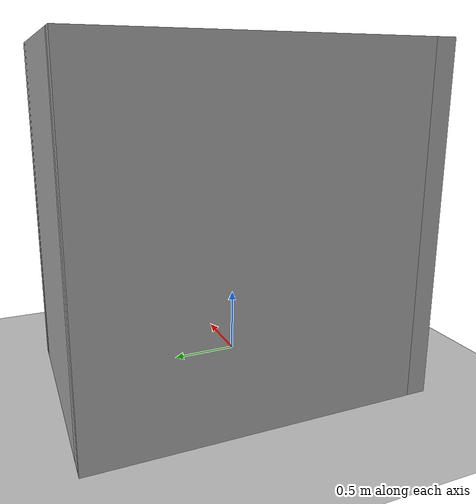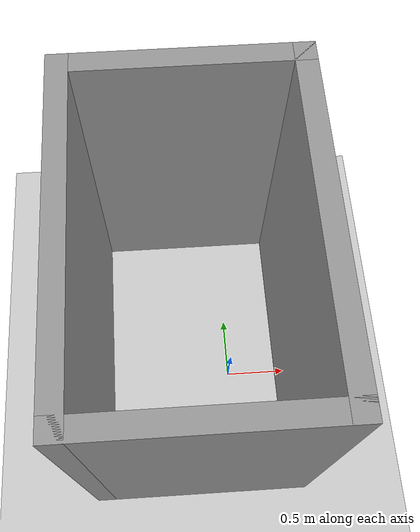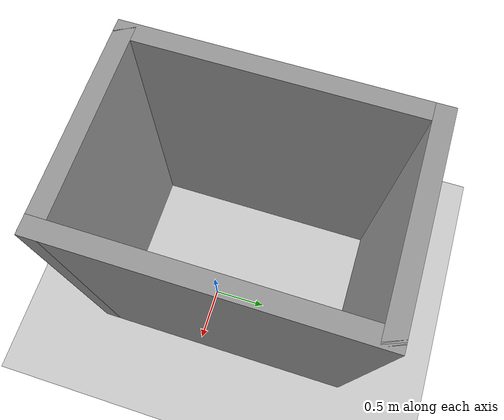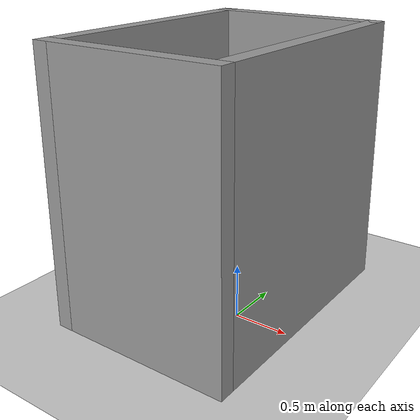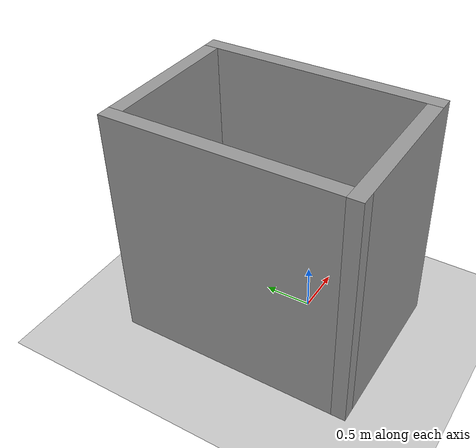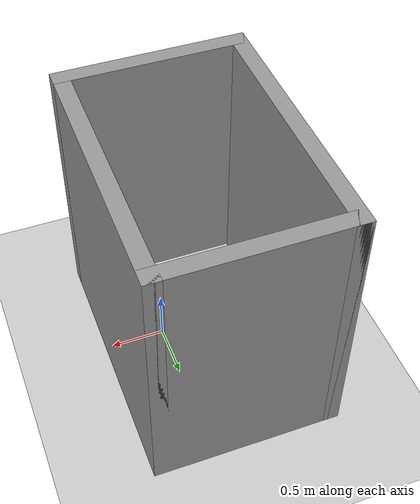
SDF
<?xml version="1.0" ?>
<sdf version="1.4">
  <world name="default">
    <include>
      <uri>model://ground_plane</uri>
    </include>

    <!-- Global light source -->
    <include>
      <uri>model://sun</uri>
    </include>

	<include>
      <uri>model://prison_cell</uri>
    </include>

  </world>
</sdf>

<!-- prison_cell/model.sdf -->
<sdf version='1.6'>
  <model name='prison_cell'>
    <pose frame=''>-0.303339 0.218579 0 0 -0 0</pose>
    <link name='Wall_5'>
      <collision name='Wall_5_Collision'>
        <geometry>
          <box>
            <size>2.5 0.15 2.5</size>
          </box>
        </geometry>
        <pose frame=''>0 0 1.25 0 -0 0</pose>
      </collision>
      <visual name='Wall_5_Visual'>
        <pose frame=''>0 0 1.25 0 -0 0</pose>
        <geometry>
          <box>
            <size>2.5 0.15 2.5</size>
          </box>
        </geometry>
        <material>
          <script>
            <uri>file://media/materials/scripts/gazebo.material</uri>
            <name>Gazebo/Grey</name>
          </script>
          <ambient>1 1 1 1</ambient>
        </material>
        <meta>
          <layer>0</layer>
        </meta>
      </visual>
      <pose frame=''>0.8 0 0 0 -0 -1.5708</pose>
    </link>
    <link name='Wall_6'>
      <collision name='Wall_6_Collision'>
        <geometry>
          <box>
            <size>1.75 0.15 2.5</size>
          </box>
        </geometry>
        <pose frame=''>0 0 1.25 0 -0 0</pose>
      </collision>
      <visual name='Wall_6_Visual'>
        <pose frame=''>0 0 1.25 0 -0 0</pose>
        <geometry>
          <box>
            <size>1.75 0.15 2.5</size>
          </box>
        </geometry>
        <material>
          <script>
            <uri>file://media/materials/scripts/gazebo.material</uri>
            <name>Gazebo/Grey</name>
          </script>
          <ambient>1 1 1 1</ambient>
        </material>
        <meta>
          <layer>0</layer>
        </meta>
      </visual>
      <pose frame=''>0 -1.175 0 0 -0 3.14159</pose>
    </link>
    <link name='Wall_7'>
      <collision name='Wall_7_Collision'>
        <geometry>
          <box>
            <size>2.5 0.15 2.5</size>
          </box>
        </geometry>
        <pose frame=''>0 0 1.25 0 -0 0</pose>
      </collision>
      <visual name='Wall_7_Visual'>
        <pose frame=''>0 0 1.25 0 -0 0</pose>
        <geometry>
          <box>
            <size>2.5 0.15 2.5</size>
          </box>
        </geometry>
        <material>
          <script>
            <uri>file://media/materials/scripts/gazebo.material</uri>
            <name>Gazebo/Grey</name>
          </script>
          <ambient>1 1 1 1</ambient>
        </material>
        <meta>
          <layer>0</layer>
        </meta>
      </visual>
      <pose frame=''>-0.8 0 0 0 -0 1.5708</pose>
    </link>
    <link name='Wall_8'>
      <collision name='Wall_8_Collision'>
        <geometry>
          <box>
            <size>1.75 0.15 2.5</size>
          </box>
        </geometry>
        <pose frame=''>0 0 1.25 0 -0 0</pose>
      </collision>
      <visual name='Wall_8_Visual'>
        <pose frame=''>0 0 1.25 0 -0 0</pose>
        <geometry>
          <box>
            <size>1.75 0.15 2.5</size>
          </box>
        </geometry>
        <material>
          <script>
            <uri>file://media/materials/scripts/gazebo.material</uri>
            <name>Gazebo/Grey</name>
          </script>
          <ambient>1 1 1 1</ambient>
        </material>
        <meta>
          <layer>0</layer>
        </meta>
      </visual>
      <pose frame=''>0 1.175 0 0 -0 0</pose>
    </link>
    <static>1</static>
  </model>
</sdf>
